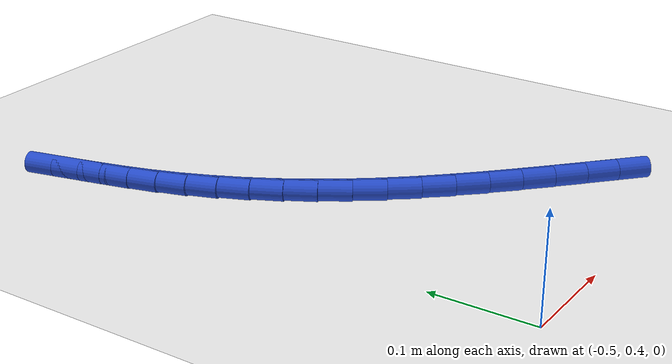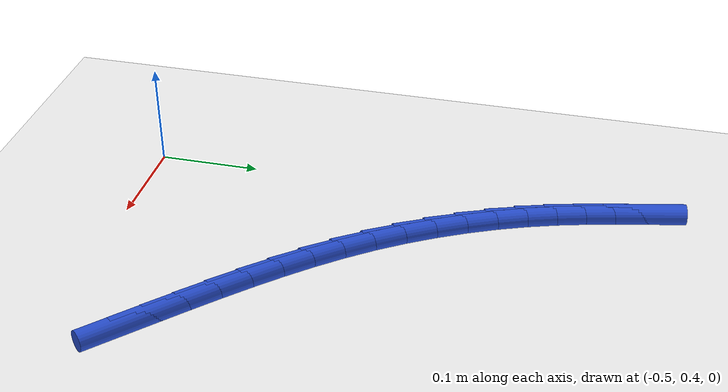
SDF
<sdf version="1.6">
 <world name="default">
  <model name="ground_plane">
   <static>1</static>
   <link name="link">
    <collision name="collision">
     <geometry><plane><normal>0 0 1</normal><size>100 100</size></plane></geometry>
     <surface><friction><ode><mu>100</mu><mu2>50</mu2></ode></friction></surface>
    </collision>
    <visual name="visual">
     <cast_shadows>0</cast_shadows>
     <geometry><plane><normal>0 0 1</normal><size>100 100</size></plane></geometry>
     <material>
      <script><uri>file://media/materials/scripts/gazebo.material</uri><name>Gazebo/WhiteGlow</name></script>
     </material>
    </visual>
   </link>
  </model>
  <model name="line">
   <link name="link_18">
    <pose>-0.21989119257037476 0.46835416616588577 0.01 0 1.57 -0.7483459253022219</pose>
    <collision name="collision">
     <geometry><cylinder><radius>0.01</radius><length>0.08</length></cylinder></geometry>
    </collision>
    <visual name="visual">
     <material>
      <script><name>Gazebo/Blue</name><uri>file://media/materials/scripts/gazebo.material</uri></script>
     </material>
     <geometry><cylinder><radius>0.01</radius><length>0.08</length></cylinder></geometry>
    </visual>
   </link>
   <link name="link_19">
    <pose>-0.24292734541355188 0.4897435015515403 0.01 0 1.57 -0.7520541750924424</pose>
    <collision name="collision">
     <geometry><cylinder><radius>0.01</radius><length>0.08</length></cylinder></geometry>
    </collision>
    <visual name="visual">
     <material>
      <script><name>Gazebo/Blue</name><uri>file://media/materials/scripts/gazebo.material</uri></script>
     </material>
     <geometry><cylinder><radius>0.01</radius><length>0.08</length></cylinder></geometry>
    </visual>
   </link>
   <link name="link_20">
    <pose>-0.26595711941086553 0.5112864907985555 0.01 0 1.57 -0.7625839180046503</pose>
    <collision name="collision">
     <geometry><cylinder><radius>0.01</radius><length>0.08</length></cylinder></geometry>
    </collision>
    <visual name="visual">
     <material>
      <script><name>Gazebo/Blue</name><uri>file://media/materials/scripts/gazebo.material</uri></script>
     </material>
     <geometry><cylinder><radius>0.01</radius><length>0.08</length></cylinder></geometry>
    </visual>
   </link>
   <link name="link_21">
    <pose>-0.2887846944367449 0.5330955382485633 0.01 0 1.57 -0.7799732535611396</pose>
    <collision name="collision">
     <geometry><cylinder><radius>0.01</radius><length>0.08</length></cylinder></geometry>
    </collision>
    <visual name="visual">
     <material>
      <script><name>Gazebo/Blue</name><uri>file://media/materials/scripts/gazebo.material</uri></script>
     </material>
     <geometry><cylinder><radius>0.01</radius><length>0.08</length></cylinder></geometry>
    </visual>
   </link>
   <link name="link_22">
    <pose>-0.3112142503656186 0.5552830482431945 0.01 0 1.57 -0.8043260909817267</pose>
    <collision name="collision">
     <geometry><cylinder><radius>0.01</radius><length>0.08</length></cylinder></geometry>
    </collision>
    <visual name="visual">
     <material>
      <script><name>Gazebo/Blue</name><uri>file://media/materials/scripts/gazebo.material</uri></script>
     </material>
     <geometry><cylinder><radius>0.01</radius><length>0.08</length></cylinder></geometry>
    </visual>
   </link>
   <link name="link_23">
    <pose>-0.333049967071916 0.5779614251240812 0.01 0 1.57 -0.8357887305561135</pose>
    <collision name="collision">
     <geometry><cylinder><radius>0.01</radius><length>0.08</length></cylinder></geometry>
    </collision>
    <visual name="visual">
     <material>
      <script><name>Gazebo/Blue</name><uri>file://media/materials/scripts/gazebo.material</uri></script>
     </material>
     <geometry><cylinder><radius>0.01</radius><length>0.08</length></cylinder></geometry>
    </visual>
   </link>
   <link name="link_24">
    <pose>-0.35409602443006627 0.601243073232855 0.01 0 1.57 -0.8745154024992673</pose>
    <collision name="collision">
     <geometry><cylinder><radius>0.01</radius><length>0.08</length></cylinder></geometry>
    </collision>
    <visual name="visual">
     <material>
      <script><name>Gazebo/Blue</name><uri>file://media/materials/scripts/gazebo.material</uri></script>
     </material>
     <geometry><cylinder><radius>0.01</radius><length>0.08</length></cylinder></geometry>
    </visual>
   </link>
   <link name="link_25">
    <pose>-0.37415660231449815 0.6252403969111471 0.01 0 1.57 -0.9206202751416523</pose>
    <collision name="collision">
     <geometry><cylinder><radius>0.01</radius><length>0.08</length></cylinder></geometry>
    </collision>
    <visual name="visual">
     <material>
      <script><name>Gazebo/Blue</name><uri>file://media/materials/scripts/gazebo.material</uri></script>
     </material>
     <geometry><cylinder><radius>0.01</radius><length>0.08</length></cylinder></geometry>
    </visual>
   </link>
   <link name="link_26">
    <pose>-0.3930358805996407 0.6500658005005888 0.01 0 1.57 -0.9731091699910684</pose>
    <collision name="collision">
     <geometry><cylinder><radius>0.01</radius><length>0.08</length></cylinder></geometry>
    </collision>
    <visual name="visual">
     <material>
      <script><name>Gazebo/Blue</name><uri>file://media/materials/scripts/gazebo.material</uri></script>
     </material>
     <geometry><cylinder><radius>0.01</radius><length>0.08</length></cylinder></geometry>
    </visual>
   </link>
   <link name="link_27">
    <pose>-0.410550807948935 0.6757947896407362 0.01 0 1.57 -1.0262132315540728</pose>
    <collision name="collision">
     <geometry><cylinder><radius>0.01</radius><length>0.08</length></cylinder></geometry>
    </collision>
    <visual name="visual">
     <material>
      <script><name>Gazebo/Blue</name><uri>file://media/materials/scripts/gazebo.material</uri></script>
     </material>
     <geometry><cylinder><radius>0.01</radius><length>0.08</length></cylinder></geometry>
    </visual>
   </link>
   <link name="link_28">
    <pose>-0.42659430295802186 0.7022833353001264 0.01 0 1.57 -1.0785201466216954</pose>
    <collision name="collision">
     <geometry><cylinder><radius>0.01</radius><length>0.08</length></cylinder></geometry>
    </collision>
    <visual name="visual">
     <material>
      <script><name>Gazebo/Blue</name><uri>file://media/materials/scripts/gazebo.material</uri></script>
     </material>
     <geometry><cylinder><radius>0.01</radius><length>0.08</length></cylinder></geometry>
    </visual>
   </link>
   <link name="link_29">
    <pose>-0.4410872674943606 0.7293065435814905 0.01 0 1.57 -1.1309279285800542</pose>
    <collision name="collision">
     <geometry><cylinder><radius>0.01</radius><length>0.08</length></cylinder></geometry>
    </collision>
    <visual name="visual">
     <material>
      <script><name>Gazebo/Blue</name><uri>file://media/materials/scripts/gazebo.material</uri></script>
     </material>
     <geometry><cylinder><radius>0.01</radius><length>0.08</length></cylinder></geometry>
    </visual>
   </link>
   <link name="link_30">
    <pose>-0.4539506472248995 0.7566393940176628 0.01 0 1.57 -1.1844005741677366</pose>
    <collision name="collision">
     <geometry><cylinder><radius>0.01</radius><length>0.08</length></cylinder></geometry>
    </collision>
    <visual name="visual">
     <material>
      <script><name>Gazebo/Blue</name><uri>file://media/materials/scripts/gazebo.material</uri></script>
     </material>
     <geometry><cylinder><radius>0.01</radius><length>0.08</length></cylinder></geometry>
    </visual>
   </link>
   <link name="link_31">
    <pose>-0.4651053878165873 0.7840568661414786 0.01 0 1.57 -1.239612823315265</pose>
    <collision name="collision">
     <geometry><cylinder><radius>0.01</radius><length>0.08</length></cylinder></geometry>
    </collision>
    <visual name="visual">
     <material>
      <script><name>Gazebo/Blue</name><uri>file://media/materials/scripts/gazebo.material</uri></script>
     </material>
     <geometry><cylinder><radius>0.01</radius><length>0.08</length></cylinder></geometry>
    </visual>
   </link>
   <link name="link_32">
    <pose>-0.4744890626398107 0.8113470680955398 0.01 0 1.57 -1.289584873853484</pose>
    <collision name="collision">
     <geometry><cylinder><radius>0.01</radius><length>0.08</length></cylinder></geometry>
    </collision>
    <visual name="visual">
     <material>
      <script><name>Gazebo/Blue</name><uri>file://media/materials/scripts/gazebo.material</uri></script>
     </material>
     <geometry><cylinder><radius>0.01</radius><length>0.08</length></cylinder></geometry>
    </visual>
   </link>
   <link name="link_33">
    <pose>-0.4823437676717832 0.8385385476288543 0.01 0 1.57 -1.32576523492219</pose>
    <collision name="collision">
     <geometry><cylinder><radius>0.01</radius><length>0.08</length></cylinder></geometry>
    </collision>
    <visual name="visual">
     <material>
      <script><name>Gazebo/Blue</name><uri>file://media/materials/scripts/gazebo.material</uri></script>
     </material>
     <geometry><cylinder><radius>0.01</radius><length>0.08</length></cylinder></geometry>
    </visual>
   </link>
   <link name="link_34">
    <pose>-0.48917825107933516 0.8658703910385768 0.01 0 1.57 -1.346209093152567</pose>
    <collision name="collision">
     <geometry><cylinder><radius>0.01</radius><length>0.08</length></cylinder></geometry>
    </collision>
    <visual name="visual">
     <material>
      <script><name>Gazebo/Blue</name><uri>file://media/materials/scripts/gazebo.material</uri></script>
     </material>
     <geometry><cylinder><radius>0.01</radius><length>0.08</length></cylinder></geometry>
    </visual>
   </link>
   <link name="link_35">
    <pose>-0.49551027275156 0.8935887999391006 0.01 0 1.57 -1.350546205599193</pose>
    <collision name="collision">
     <geometry><cylinder><radius>0.01</radius><length>0.08</length></cylinder></geometry>
    </collision>
    <visual name="visual">
     <material>
      <script><name>Gazebo/Blue</name><uri>file://media/materials/scripts/gazebo.material</uri></script>
     </material>
     <geometry><cylinder><radius>0.01</radius><length>0.08</length></cylinder></geometry>
    </visual>
   </link>
  </model>
 </world>
</sdf>
